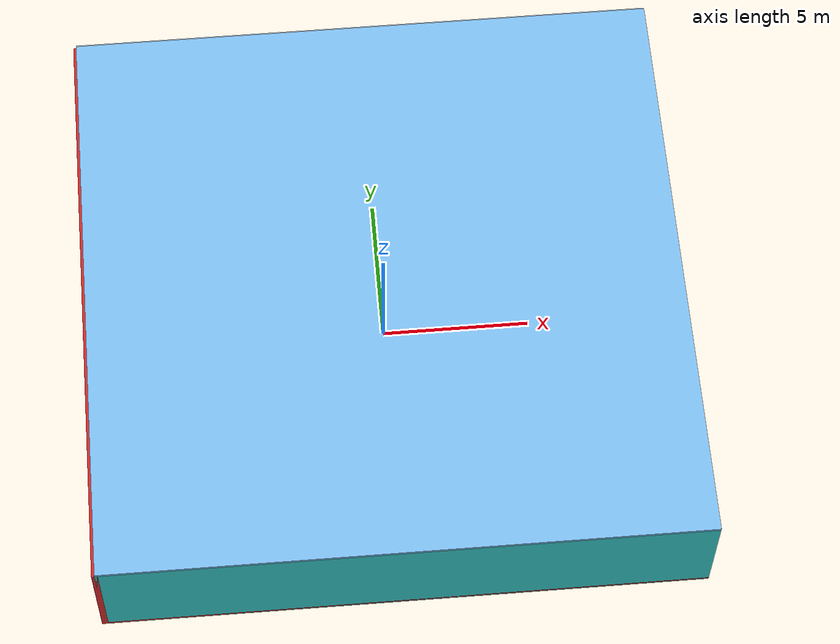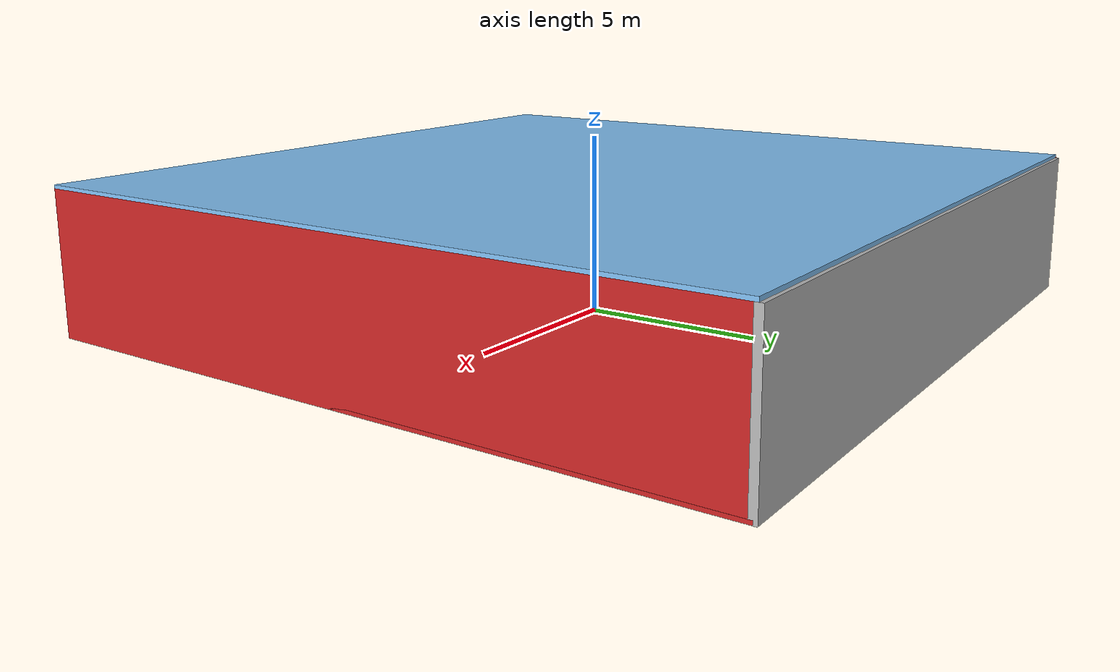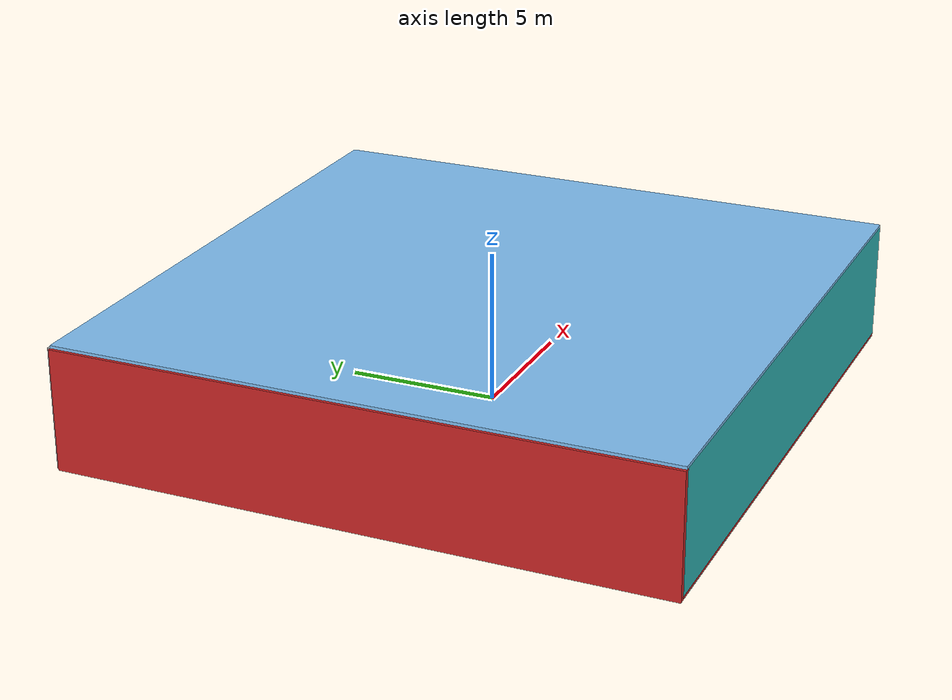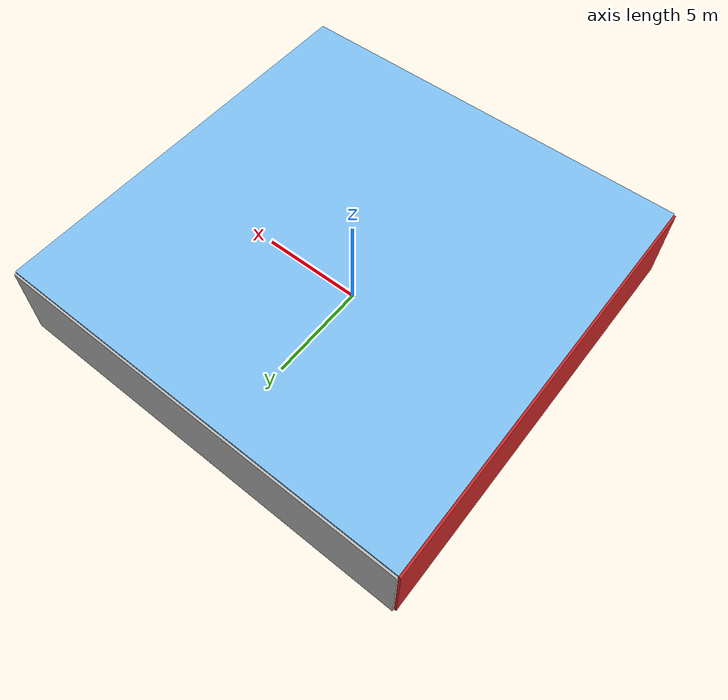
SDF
<sdf version="1.4">
 <world name="default">
  <physics type="ode">
   <max_step_size>0.001</max_step_size>
   <real_time_factor>1</real_time_factor>
   <real_time_update_rate>1000</real_time_update_rate>
   <gravity>0 0 -9.8</gravity>
  </physics>
  <scene><ambient>0.4 0.4 0.4 1</ambient><background>0.7 0.7 0.7 1</background><shadows>1</shadows></scene>
  <model name="Surrounding">
   <static>1</static>
   <link name="Ceiling">
    <collision name="Ceiling_Collision"><geometry><box><size>20 20 0.1</size></box></geometry></collision>
    <visual name="Ceiling_Visual">
     <geometry><box><size>20 20 0.1</size></box></geometry>
     <material>
      <script><uri>file://media/materials/scripts/gazebo.material</uri><name>Gazebo/SkyBlue</name></script>
     </material>
    </visual>
    <pose>0 0 4.05 0 0 0</pose>
   </link>
   <link name="Wall_South">
    <collision name="Wall_South_Collision">
     <geometry><box><size>20 0 4</size></box></geometry>
     <pose>0 0 2 0 -0 0</pose>
    </collision>
    <visual name="Wall_South_Visual">
     <pose>0 0 2 0 -0 0</pose>
     <geometry><box><size>20 0 4</size></box></geometry>
     <material>
      <script>
       <uri>file://media/materials/scripts/gazebo.material</uri>
       <name>Gazebo/TurquoiseGlowOutline</name>
      </script>
     </material>
    </visual>
    <velocity_decay><linear>0</linear><angular>0</angular></velocity_decay>
    <pose>0 -10 0 0 -0 0</pose>
   </link>
   <link name="Wall_East">
    <collision name="Wall_21_Collision">
     <geometry><box><size>20 0 4</size></box></geometry>
     <pose>0 0 2 0 -0 0</pose>
    </collision>
    <visual name="Wall_21_Visual">
     <pose>0 0 2 0 -0 0</pose>
     <geometry><box><size>20 0 4</size></box></geometry>
     <material>
      <script><uri>file://media/materials/scripts/gazebo.material</uri><name>Gazebo/RedGlow</name></script>
     </material>
    </visual>
    <velocity_decay><linear>0</linear><angular>0</angular></velocity_decay>
    <pose>10 0 0 0 -0 1.5708</pose>
   </link>
   <link name="Wall_North">
    <collision name="Wall_22_Collision">
     <geometry><box><size>20 0.2 4</size></box></geometry>
     <pose>0 0 2 0 -0 0</pose>
    </collision>
    <visual name="Wall_22_Visual">
     <pose>0 0 2 0 -0 0</pose>
     <geometry><box><size>20 0.2 4</size></box></geometry>
     <material>
      <script><uri>file://media/materials/scripts/gazebo.material</uri><name>Gazebo/LightOff</name></script>
     </material>
    </visual>
    <velocity_decay><linear>0</linear><angular>0</angular></velocity_decay>
    <pose>0 10 0 0 -0 0</pose>
   </link>
   <link name="Wall_West">
    <collision name="Wall_23_Collision">
     <geometry><box><size>20 0.2 4</size></box></geometry>
     <pose>0 0 2 0 -0 0</pose>
    </collision>
    <visual name="Wall_23_Visual">
     <pose>0 0 2 0 -0 0</pose>
     <geometry><box><size>20 0.2 4</size></box></geometry>
     <material>
      <script><uri>file://media/materials/scripts/gazebo.material</uri><name>Gazebo/Red</name></script>
     </material>
    </visual>
    <velocity_decay><linear>0</linear><angular>0</angular></velocity_decay>
    <pose>-10 0 0 0 0 -1.5708</pose>
   </link>
   <link name="Ground_link">
    <collision name="collision">
     <pose>0 0 .05 0 -0 0</pose>
     <geometry><box><size>20 20 0.1</size></box></geometry>
    </collision>
    <visual name="visual">
     <pose>0 0 .05 0 -0 0</pose>
     <geometry><box><size>20 20 0.1</size></box></geometry>
     <material>
      <script><uri>file://media/materials/scripts/gazebo.material</uri><name>Gazebo/Red</name></script>
     </material>
    </visual>
   </link>
   <static>1</static>
  </model>
  <spherical_coordinates>
   <surface_model>EARTH_WGS84</surface_model>
   <latitude_deg>0</latitude_deg>
   <longitude_deg>0</longitude_deg>
   <elevation>0</elevation>
   <heading_deg>0</heading_deg>
  </spherical_coordinates>
  <light name="lightball_0" type="diffuse">
   <diffuse>0.8 0.8 0.8 1</diffuse>
   <specular>0.2 0.2 0.2 1</specular>
   <attenuation>
    <range>100</range>
    <constant>0.7</constant>
    <linear>0.01</linear>
    <quadratic>0.001</quadratic>
   </attenuation>
   <direction>-0.5 0.1 -0.9</direction>
   <pose>6.2474635427 9.33882827427 3.19275163978 0 0 0</pose>
  </light>
  <light name="lightball_1" type="diffuse">
   <diffuse>0.8 0.8 0.8 1</diffuse>
   <specular>0.2 0.2 0.2 1</specular>
   <attenuation>
    <range>100</range>
    <constant>0.7</constant>
    <linear>0.01</linear>
    <quadratic>0.001</quadratic>
   </attenuation>
   <direction>-0.5 0.1 -0.9</direction>
   <pose>-1.43322251465 -7.89838755254 0.979923043522 0 0 0</pose>
  </light>
  <light name="lightball_2" type="diffuse">
   <diffuse>0.8 0.8 0.8 1</diffuse>
   <specular>0.2 0.2 0.2 1</specular>
   <attenuation>
    <range>100</range>
    <constant>0.7</constant>
    <linear>0.01</linear>
    <quadratic>0.001</quadratic>
   </attenuation>
   <direction>-0.5 0.1 -0.9</direction>
   <pose>-4.90855839413 -5.32440401467 3.46854766622 0 0 0</pose>
  </light>
  <light name="lightball_3" type="diffuse">
   <diffuse>0.8 0.8 0.8 1</diffuse>
   <specular>0.2 0.2 0.2 1</specular>
   <attenuation>
    <range>100</range>
    <constant>0.7</constant>
    <linear>0.01</linear>
    <quadratic>0.001</quadratic>
   </attenuation>
   <direction>-0.5 0.1 -0.9</direction>
   <pose>-9.57005714936 9.75817051553 2.19614183361 0 0 0</pose>
  </light>
  <light name="lightball_4" type="diffuse">
   <diffuse>0.8 0.8 0.8 1</diffuse>
   <specular>0.2 0.2 0.2 1</specular>
   <attenuation>
    <range>100</range>
    <constant>0.7</constant>
    <linear>0.01</linear>
    <quadratic>0.001</quadratic>
   </attenuation>
   <direction>-0.5 0.1 -0.9</direction>
   <pose>-1.62125528786 -9.1599798527 2.7989832409 0 0 0</pose>
  </light>
  <light name="lightball_5" type="diffuse">
   <diffuse>0.8 0.8 0.8 1</diffuse>
   <specular>0.2 0.2 0.2 1</specular>
   <attenuation>
    <range>100</range>
    <constant>0.7</constant>
    <linear>0.01</linear>
    <quadratic>0.001</quadratic>
   </attenuation>
   <direction>-0.5 0.1 -0.9</direction>
   <pose>-7.0968627414 -7.36524742914 2.36503920263 0 0 0</pose>
  </light>
  <light name="lightball_6" type="diffuse">
   <diffuse>0.8 0.8 0.8 1</diffuse>
   <specular>0.2 0.2 0.2 1</specular>
   <attenuation>
    <range>100</range>
    <constant>0.7</constant>
    <linear>0.01</linear>
    <quadratic>0.001</quadratic>
   </attenuation>
   <direction>-0.5 0.1 -0.9</direction>
   <pose>-6.41882427614 -2.74068106884 0.78719001103 0 0 0</pose>
  </light>
  <light name="lightball_7" type="diffuse">
   <diffuse>0.8 0.8 0.8 1</diffuse>
   <specular>0.2 0.2 0.2 1</specular>
   <attenuation>
    <range>100</range>
    <constant>0.7</constant>
    <linear>0.01</linear>
    <quadratic>0.001</quadratic>
   </attenuation>
   <direction>-0.5 0.1 -0.9</direction>
   <pose>-2.06829232068 0.264867220662 2.61843207644 0 0 0</pose>
  </light>
  <light name="lightball_8" type="diffuse">
   <diffuse>0.8 0.8 0.8 1</diffuse>
   <specular>0.2 0.2 0.2 1</specular>
   <attenuation>
    <range>100</range>
    <constant>0.7</constant>
    <linear>0.01</linear>
    <quadratic>0.001</quadratic>
   </attenuation>
   <direction>-0.5 0.1 -0.9</direction>
   <pose>-1.5615449968 3.85612671476 0.667432354664 0 0 0</pose>
  </light>
  <light name="lightball_9" type="diffuse">
   <diffuse>0.8 0.8 0.8 1</diffuse>
   <specular>0.2 0.2 0.2 1</specular>
   <attenuation>
    <range>100</range>
    <constant>0.7</constant>
    <linear>0.01</linear>
    <quadratic>0.001</quadratic>
   </attenuation>
   <direction>-0.5 0.1 -0.9</direction>
   <pose>4.01332722321 -5.77822464177 1.30276123114 0 0 0</pose>
  </light>
  <light name="lightball_10" type="diffuse">
   <diffuse>0.8 0.8 0.8 1</diffuse>
   <specular>0.2 0.2 0.2 1</specular>
   <attenuation>
    <range>100</range>
    <constant>0.7</constant>
    <linear>0.01</linear>
    <quadratic>0.001</quadratic>
   </attenuation>
   <direction>-0.5 0.1 -0.9</direction>
   <pose>7.62939804983 1.0664134877 3.74981683209 0 0 0</pose>
  </light>
  <light name="lightball_11" type="diffuse">
   <diffuse>0.8 0.8 0.8 1</diffuse>
   <specular>0.2 0.2 0.2 1</specular>
   <attenuation>
    <range>100</range>
    <constant>0.7</constant>
    <linear>0.01</linear>
    <quadratic>0.001</quadratic>
   </attenuation>
   <direction>-0.5 0.1 -0.9</direction>
   <pose>0.965988628981 8.38303271262 3.49640988099 0 0 0</pose>
  </light>
  <light name="lightball_12" type="diffuse">
   <diffuse>0.8 0.8 0.8 1</diffuse>
   <specular>0.2 0.2 0.2 1</specular>
   <attenuation>
    <range>100</range>
    <constant>0.7</constant>
    <linear>0.01</linear>
    <quadratic>0.001</quadratic>
   </attenuation>
   <direction>-0.5 0.1 -0.9</direction>
   <pose>5.07453640814 5.48616641609 3.0243396456 0 0 0</pose>
  </light>
  <light name="lightball_13" type="diffuse">
   <diffuse>0.8 0.8 0.8 1</diffuse>
   <specular>0.2 0.2 0.2 1</specular>
   <attenuation>
    <range>100</range>
    <constant>0.7</constant>
    <linear>0.01</linear>
    <quadratic>0.001</quadratic>
   </attenuation>
   <direction>-0.5 0.1 -0.9</direction>
   <pose>7.67546466371 -6.76269644403 2.83086789248 0 0 0</pose>
  </light>
  <include><uri>model://cabinet</uri><pose>-5.18710186471 4.2175824979 0 0 0 1.96718451297</pose></include>
  <include><uri>model://cabinet</uri><pose>-2.26700343116 7.07466580523 0 0 0 3.06995215538</pose></include>
  <include>
   <uri>model://robocup_3Dsim_goal</uri>
   <pose>1.93223645917 -6.81650375742 0 0 0 1.12247788303</pose>
  </include>
  <include>
   <uri>model://robocup_3Dsim_goal</uri>
   <pose>2.25320527558 3.93841822474 0 0 0 0.780378119891</pose>
  </include>
  <include>
   <uri>model://robocup_3Dsim_goal</uri>
   <pose>4.25760848435 7.29058117218 0 0 0 2.25718981467</pose>
  </include>
  <include><uri>model://cabinet</uri><pose>8.29110339526 -4.6560621634 0 0 0 0.353724608052</pose></include>
 </world>
</sdf>

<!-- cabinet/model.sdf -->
<sdf version="1.5">
  <model name="cabinet">
    <static>true</static>
    <link name="cabinet_bottom_plate">
      <inertial>
        <pose>0 0 -1 0 0 0</pose>
        <inertia>
          <ixx>2.050000</ixx>
          <ixy>0</ixy>
          <ixz>0</ixz>
          <iyy>2.050000</iyy>
          <iyz>0</iyz>
          <izz>2.050000</izz>
        </inertia>
        <mass>25.000000</mass>
      </inertial>
      <collision name="cabinet_bottom_plate_geom">
        <pose>0 0 0.010000 0 0 0</pose>
        <geometry>
          <box>
            <size>0.450000 0.450000 0.020000</size>
          </box>
        </geometry>
      </collision>
      <visual name="cabinet_bottom_plate_geom_visual">
        <pose>0 0 0.010000 0 0 0</pose>
        <geometry>
          <box>
            <size>0.450000 0.450000 0.020000</size>
          </box>
        </geometry>
        <material>
          <script>
            <uri>model://media/materials/scripts/gazebo.material</uri>
            <name>Gazebo/Wood</name>
          </script>
        </material>
      </visual>
      <collision name="cabinet_bottom_plate_geom_cabinet_back_plate">
        <pose>0.235000 0 0.510000 0 0 0</pose>
        <geometry>
          <box>
            <size>0.020000 0.450000 1.020000</size>
          </box>
        </geometry>
      </collision>
      <visual name="cabinet_bottom_plate_geom_cabinet_back_plate_visual">
        <pose>0.235000 0 0.510000 0 0 0</pose>
        <geometry>
          <box>
            <size>0.020000 0.450000 1.020000</size>
          </box>
        </geometry>
        <material>
          <script>
            <uri>model://media/materials/scripts/gazebo.material</uri>
            <name>Gazebo/Wood</name>
          </script>
        </material>
      </visual>
      <collision name="cabinet_bottom_plate_geom_cabinet_left_plate">
        <pose>0 0.235000 0.510000 0 0 0</pose>
        <geometry>
          <box>
            <size>0.450000 0.020000 1.020000</size>
          </box>
        </geometry>
      </collision>
      <visual name="cabinet_bottom_plate_geom_cabinet_left_plate_visual">
        <pose>0 0.235000 0.510000 0 0 0</pose>
        <geometry>
          <box>
            <size>0.450000 0.020000 1.020000</size>
          </box>
        </geometry>
        <material>
          <script>
            <uri>model://media/materials/scripts/gazebo.material</uri>
            <name>Gazebo/Wood</name>
          </script>
        </material>
      </visual>
      <collision name="cabinet_bottom_plate_geom_cabinet_middle_plate">
        <pose>0 0 0.510000 0 0 0</pose>
        <geometry>
          <box>
            <size>0.450000 0.450000 0.020000</size>
          </box>
        </geometry>
      </collision>
      <visual name="cabinet_bottom_plate_geom_cabinet_middle_plate_visual">
        <pose>0 0 0.510000 0 0 0</pose>
        <geometry>
          <box>
            <size>0.450000 0.450000 0.020000</size>
          </box>
        </geometry>
        <material>
          <script>
            <uri>model://media/materials/scripts/gazebo.material</uri>
            <name>Gazebo/Wood</name>
          </script>
        </material>
      </visual>
      <collision name="cabinet_bottom_plate_geom_cabinet_right_plate">
        <pose>0 -0.235000 0.510000 0 0 0</pose>
        <geometry>
          <box>
            <size>0.450000 0.020000 1.020000</size>
          </box>
        </geometry>
      </collision>
      <visual name="cabinet_bottom_plate_geom_cabinet_right_plate_visual">
        <pose>0 -0.235000 0.510000 0 0 0</pose>
        <geometry>
          <box>
            <size>0.450000 0.020000 1.020000</size>
          </box>
        </geometry>
        <material>
          <script>
            <uri>model://media/materials/scripts/gazebo.material</uri>
            <name>Gazebo/Wood</name>
          </script>
        </material>
      </visual>
      <collision name="cabinet_bottom_plate_geom_cabinet_top_plate">
        <pose>0 0 1.010000 0 0 0</pose>
        <geometry>
          <box>
            <size>0.450000 0.450000 0.020000</size>
          </box>
        </geometry>
      </collision>
      <visual name="cabinet_bottom_plate_geom_cabinet_top_plate_visual">
        <pose>0 0 1.010000 0 0 0</pose>
        <geometry>
          <box>
            <size>0.450000 0.450000 0.020000</size>
          </box>
        </geometry>
        <material>
          <script>
            <uri>model://media/materials/scripts/gazebo.material</uri>
            <name>Gazebo/Wood</name>
          </script>
        </material>
      </visual>
    </link>
  </model>
</sdf>

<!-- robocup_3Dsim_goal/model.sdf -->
<sdf version="1.5">
  <model name="robocup_3d_goal">
    <static>true</static>
    <link name="left_post">
      <pose>0 1.05 0.45 0 0 0</pose>
      <collision name="collision">
        <geometry>
          <cylinder>
            <radius>0.05</radius>
            <length>0.9</length>
          </cylinder>
        </geometry>
      </collision>
      <visual name="visual">
        <geometry>
          <cylinder>
            <radius>0.05</radius>
            <length>0.9</length>
          </cylinder>
        </geometry>
        <material>
          <script>
            <uri>file://media/materials/scripts/gazebo.material</uri>
            <name>Gazebo/ZincYellow</name>
          </script>
        </material>
      </visual>
    </link>
    <link name="left_support_horiz_lower">
      <pose>0.30 1.05 0.01 0 0 0</pose>
      <collision name="collision">
        <geometry>
          <box>
            <size>0.50 0.02 0.02</size>
          </box>
        </geometry>
      </collision>
      <visual name="visual">
        <geometry>
          <box>
            <size>0.50 0.02 0.02</size>
          </box>
        </geometry>
        <material>
          <script>
            <uri>file://media/materials/scripts/gazebo.material</uri>
            <name>Gazebo/White</name>
          </script>
        </material>
      </visual>
    </link>
    <link name="left_support_horiz_upper">
      <pose>0.30 1.05 0.79 0 0 0</pose>
      <collision name="collision">
        <geometry>
          <box>
            <size>0.50 0.02 0.02</size>
          </box>
        </geometry>
      </collision>
      <visual name="visual">
        <geometry>
          <box>
            <size>0.50 0.02 0.02</size>
          </box>
        </geometry>
        <material>
          <script>
            <uri>file://media/materials/scripts/gazebo.material</uri>
            <name>Gazebo/White</name>
          </script>
        </material>
      </visual>
    </link>
    <link name="left_support_vertical">
      <pose>0.56 1.05 0.4 0 1.5708 0</pose>
      <collision name="collision">
        <geometry>
          <box>
            <size>0.80 0.02 0.02</size>
          </box>
        </geometry>
      </collision>
      <visual name="visual">
        <geometry>
          <box>
            <size>0.80 0.02 0.02</size>
          </box>
        </geometry>
        <material>
          <script>
            <uri>file://media/materials/scripts/gazebo.material</uri>
            <name>Gazebo/White</name>
          </script>
        </material>
      </visual>
    </link>
    <link name="right_support_horiz_lower">
      <pose>0.30 -1.05 0.01 0 0 0</pose>
      <collision name="collision">
        <geometry>
          <box>
            <size>0.50 0.02 0.02</size>
          </box>
        </geometry>
      </collision>
      <visual name="visual">
        <geometry>
          <box>
            <size>0.50 0.02 0.02</size>
          </box>
        </geometry>
        <material>
          <script>
            <uri>file://media/materials/scripts/gazebo.material</uri>
            <name>Gazebo/White</name>
          </script>
        </material>
      </visual>
    </link>
    <link name="right_support_horiz_upper">
      <pose>0.30 -1.05 0.79 0 0 0</pose>
      <collision name="collision">
        <geometry>
          <box>
            <size>0.50 0.02 0.02</size>
          </box>
        </geometry>
      </collision>
      <visual name="visual">
        <geometry>
          <box>
            <size>0.50 0.02 0.02</size>
          </box>
        </geometry>
        <material>
          <script>
            <uri>file://media/materials/scripts/gazebo.material</uri>
            <name>Gazebo/White</name>
          </script>
        </material>
      </visual>
    </link>
    <link name="right_support_vertical">
      <pose>0.56 -1.05 0.4 0 1.5708 0</pose>
      <collision name="collision">
        <geometry>
          <box>
            <size>0.80 0.02 0.02</size>
          </box>
        </geometry>
      </collision>
      <visual name="visual">
        <geometry>
          <box>
            <size>0.80 0.02 0.02</size>
          </box>
        </geometry>
        <material>
          <script>
            <uri>file://media/materials/scripts/gazebo.material</uri>
            <name>Gazebo/White</name>
          </script>
        </material>
      </visual>
    </link>
    <link name="center_support_horiz_lower">
      <pose>0.56 0 0.01 0 1.5708 0</pose>
      <collision name="collision">
        <geometry>
          <box>
            <size>0.02 2.08 0.02</size>
          </box>
        </geometry>
      </collision>
      <visual name="visual">
        <geometry>
          <box>
            <size>0.02 2.08 0.02</size>
          </box>
        </geometry>
        <material>
          <script>
            <uri>file://media/materials/scripts/gazebo.material</uri>
            <name>Gazebo/White</name>
          </script>
        </material>
      </visual>
    </link>
    <link name="center_support_horiz_upper">
      <pose>0.56 0 0.79 0 1.5708 0</pose>
      <collision name="collision">
        <geometry>
          <box>
            <size>0.02 2.08 0.02</size>
          </box>
        </geometry>
      </collision>
      <visual name="visual">
        <geometry>
          <box>
            <size>0.02 2.08 0.02</size>
          </box>
        </geometry>
        <material>
          <script>
            <uri>file://media/materials/scripts/gazebo.material</uri>
            <name>Gazebo/White</name>
          </script>
        </material>
      </visual>
    </link>
    <link name="right_post">
      <pose>0 -1.05 0.45 0 0 0</pose>
      <collision name="collision">
        <geometry>
          <cylinder>
            <radius>0.05</radius>
            <length>0.9</length>
          </cylinder>
        </geometry>
      </collision>
      <visual name="visual">
        <geometry>
          <cylinder>
            <radius>0.05</radius>
            <length>0.9</length>
          </cylinder>
        </geometry>
        <material>
          <script>
            <uri>file://media/materials/scripts/gazebo.material</uri>
            <name>Gazebo/ZincYellow</name>
          </script>
        </material>
      </visual>
    </link>
    <link name="crossbar">
      <pose>0 0 0.85 1.57 1.57 0</pose>
      <collision name="collision">
        <geometry>
          <cylinder>
            <radius>0.05</radius>
            <length>2.0</length>
          </cylinder>
        </geometry>
      </collision>
      <visual name="visual">
        <geometry>
          <cylinder>
            <radius>0.05</radius>
            <length>2.0</length>
          </cylinder>
        </geometry>
        <material>
          <script>
            <uri>file://media/materials/scripts/gazebo.material</uri>
            <name>Gazebo/ZincYellow</name>
          </script>
        </material>
      </visual>
    </link>
    <link name="center_net">
      <pose>0.56 0 0.40 0 0 0</pose>
      <collision name="collision">
        <geometry>
          <box>
            <size>0.01 2.1 0.80</size>
          </box>
        </geometry>
      </collision>
      <visual name="visual">
        <geometry>
          <box>
            <size>0.01 2.1 0.80</size>
          </box>
        </geometry>
        <material>
          <script>
            <uri>model://../model_source/models/robocup09_spl_field/materials/scripts/</uri>
            <uri>model://../model_source/models/robocup09_spl_field/materials/textures/</uri>
            <name>RoboCup/Net</name>
          </script>
        </material>
      </visual>
    </link>
    <link name="left_net">
      <pose>0.30 1.05 0.40 0 0 0</pose>
      <collision name="collision">
        <geometry>
          <box>
            <size>0.50 0.01 0.76</size>
          </box>
        </geometry>
      </collision>
      <visual name="visual">
        <geometry>
          <box>
            <size>0.50 0.01 0.76</size>
          </box>
        </geometry>
        <material>
          <script>
            <uri>model://../model_source/models/robocup09_spl_field/materials/scripts/</uri>
            <uri>model://../model_source/models/robocup09_spl_field/materials/textures/</uri>
            <name>RoboCup/Net</name>
          </script>
        </material>
      </visual>
    </link>
    <link name="right_net">
      <pose>0.30 -1.05 0.40 0 0 0</pose>
      <collision name="collision">
        <geometry>
          <box>
            <size>0.50 0.01 0.76</size>
          </box>
        </geometry>
      </collision>
      <visual name="visual">
        <geometry>
          <box>
            <size>0.50 0.01 0.76</size>
          </box>
        </geometry>
        <material>
          <script>
            <uri>model://../model_source/models/robocup09_spl_field/materials/scripts/</uri>
            <uri>model://../model_source/models/robocup09_spl_field/materials/textures/</uri>
            <name>RoboCup/Net</name>
          </script>
        </material>
      </visual>
    </link>
  </model>
</sdf>
